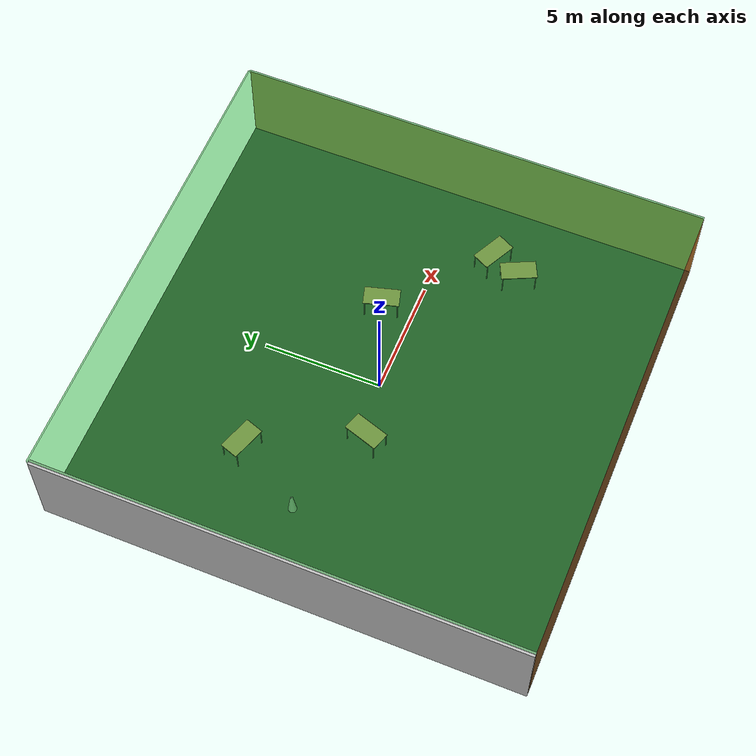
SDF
<sdf version="1.4">
 <world name="default">
  <physics type="ode">
   <max_step_size>0.001</max_step_size>
   <real_time_factor>1</real_time_factor>
   <real_time_update_rate>1000</real_time_update_rate>
   <gravity>0 0 -9.8</gravity>
  </physics>
  <scene><ambient>0.4 0.4 0.4 1</ambient><background>0.7 0.7 0.7 1</background><shadows>1</shadows></scene>
  <model name="Surrounding">
   <static>1</static>
   <link name="Ceiling">
    <collision name="Ceiling_Collision"><geometry><box><size>20 20 0.1</size></box></geometry></collision>
    <visual name="Ceiling_Visual">
     <geometry><box><size>20 20 0.1</size></box></geometry>
     <material>
      <script><uri>file://media/materials/scripts/gazebo.material</uri><name>Gazebo/GreenTransparent</name></script>
     </material>
    </visual>
    <pose>0 0 4.05 0 0 0</pose>
   </link>
   <link name="Wall_South">
    <collision name="Wall_South_Collision">
     <geometry><box><size>20 0 4</size></box></geometry>
     <pose>0 0 2 0 -0 0</pose>
    </collision>
    <visual name="Wall_South_Visual">
     <pose>0 0 2 0 -0 0</pose>
     <geometry><box><size>20 0 4</size></box></geometry>
     <material>
      <script>
       <uri>file://media/materials/scripts/gazebo.material</uri>
       <name>Gazebo/OrangeTransparent</name>
      </script>
     </material>
    </visual>
    <velocity_decay><linear>0</linear><angular>0</angular></velocity_decay>
    <pose>0 -10 0 0 -0 0</pose>
   </link>
   <link name="Wall_East">
    <collision name="Wall_21_Collision">
     <geometry><box><size>20 0 4</size></box></geometry>
     <pose>0 0 2 0 -0 0</pose>
    </collision>
    <visual name="Wall_21_Visual">
     <pose>0 0 2 0 -0 0</pose>
     <geometry><box><size>20 0 4</size></box></geometry>
     <material>
      <script><uri>file://media/materials/scripts/gazebo.material</uri><name>Gazebo/WoodFloor</name></script>
     </material>
    </visual>
    <velocity_decay><linear>0</linear><angular>0</angular></velocity_decay>
    <pose>10 0 0 0 -0 1.5708</pose>
   </link>
   <link name="Wall_North">
    <collision name="Wall_22_Collision">
     <geometry><box><size>20 0.2 4</size></box></geometry>
     <pose>0 0 2 0 -0 0</pose>
    </collision>
    <visual name="Wall_22_Visual">
     <pose>0 0 2 0 -0 0</pose>
     <geometry><box><size>20 0.2 4</size></box></geometry>
     <material>
      <script><uri>file://media/materials/scripts/gazebo.material</uri><name>Gazebo/GreenTransparent</name></script>
     </material>
    </visual>
    <velocity_decay><linear>0</linear><angular>0</angular></velocity_decay>
    <pose>0 10 0 0 -0 0</pose>
   </link>
   <link name="Wall_West">
    <collision name="Wall_23_Collision">
     <geometry><box><size>20 0.2 4</size></box></geometry>
     <pose>0 0 2 0 -0 0</pose>
    </collision>
    <visual name="Wall_23_Visual">
     <pose>0 0 2 0 -0 0</pose>
     <geometry><box><size>20 0.2 4</size></box></geometry>
     <material>
      <script><uri>file://media/materials/scripts/gazebo.material</uri><name>Gazebo/JointAnchor</name></script>
     </material>
    </visual>
    <velocity_decay><linear>0</linear><angular>0</angular></velocity_decay>
    <pose>-10 0 0 0 0 -1.5708</pose>
   </link>
   <link name="Ground_link">
    <collision name="collision">
     <pose>0 0 .05 0 -0 0</pose>
     <geometry><box><size>20 20 0.1</size></box></geometry>
    </collision>
    <visual name="visual">
     <pose>0 0 .05 0 -0 0</pose>
     <geometry><box><size>20 20 0.1</size></box></geometry>
     <material>
      <script><uri>file://media/materials/scripts/gazebo.material</uri><name>Gazebo/Black</name></script>
     </material>
    </visual>
   </link>
   <static>1</static>
  </model>
  <spherical_coordinates>
   <surface_model>EARTH_WGS84</surface_model>
   <latitude_deg>0</latitude_deg>
   <longitude_deg>0</longitude_deg>
   <elevation>0</elevation>
   <heading_deg>0</heading_deg>
  </spherical_coordinates>
  <light name="lightball_0" type="diffuse">
   <diffuse>0.8 0.8 0.8 1</diffuse>
   <specular>0.2 0.2 0.2 1</specular>
   <attenuation>
    <range>100</range>
    <constant>0.7</constant>
    <linear>0.01</linear>
    <quadratic>0.001</quadratic>
   </attenuation>
   <direction>-0.5 0.1 -0.9</direction>
   <pose>7.7302636399 -9.62024024462 0.529866899505 0 0 0</pose>
  </light>
  <light name="lightball_1" type="diffuse">
   <diffuse>0.8 0.8 0.8 1</diffuse>
   <specular>0.2 0.2 0.2 1</specular>
   <attenuation>
    <range>100</range>
    <constant>0.7</constant>
    <linear>0.01</linear>
    <quadratic>0.001</quadratic>
   </attenuation>
   <direction>-0.5 0.1 -0.9</direction>
   <pose>9.1009621195 -2.47808995886 3.73089899992 0 0 0</pose>
  </light>
  <light name="lightball_2" type="diffuse">
   <diffuse>0.8 0.8 0.8 1</diffuse>
   <specular>0.2 0.2 0.2 1</specular>
   <attenuation>
    <range>100</range>
    <constant>0.7</constant>
    <linear>0.01</linear>
    <quadratic>0.001</quadratic>
   </attenuation>
   <direction>-0.5 0.1 -0.9</direction>
   <pose>7.43702225655 -9.64500360311 3.3229554987 0 0 0</pose>
  </light>
  <light name="lightball_3" type="diffuse">
   <diffuse>0.8 0.8 0.8 1</diffuse>
   <specular>0.2 0.2 0.2 1</specular>
   <attenuation>
    <range>100</range>
    <constant>0.7</constant>
    <linear>0.01</linear>
    <quadratic>0.001</quadratic>
   </attenuation>
   <direction>-0.5 0.1 -0.9</direction>
   <pose>7.10246764244 -1.18428997081 0.864522743402 0 0 0</pose>
  </light>
  <light name="lightball_4" type="diffuse">
   <diffuse>0.8 0.8 0.8 1</diffuse>
   <specular>0.2 0.2 0.2 1</specular>
   <attenuation>
    <range>100</range>
    <constant>0.7</constant>
    <linear>0.01</linear>
    <quadratic>0.001</quadratic>
   </attenuation>
   <direction>-0.5 0.1 -0.9</direction>
   <pose>2.46361598347 3.72945640748 3.67423808109 0 0 0</pose>
  </light>
  <light name="lightball_5" type="diffuse">
   <diffuse>0.8 0.8 0.8 1</diffuse>
   <specular>0.2 0.2 0.2 1</specular>
   <attenuation>
    <range>100</range>
    <constant>0.7</constant>
    <linear>0.01</linear>
    <quadratic>0.001</quadratic>
   </attenuation>
   <direction>-0.5 0.1 -0.9</direction>
   <pose>-3.51714521344 -2.5332185677 1.07196468065 0 0 0</pose>
  </light>
  <light name="lightball_6" type="diffuse">
   <diffuse>0.8 0.8 0.8 1</diffuse>
   <specular>0.2 0.2 0.2 1</specular>
   <attenuation>
    <range>100</range>
    <constant>0.7</constant>
    <linear>0.01</linear>
    <quadratic>0.001</quadratic>
   </attenuation>
   <direction>-0.5 0.1 -0.9</direction>
   <pose>-3.58783560026 0.92346793037 0.865997832595 0 0 0</pose>
  </light>
  <light name="lightball_7" type="diffuse">
   <diffuse>0.8 0.8 0.8 1</diffuse>
   <specular>0.2 0.2 0.2 1</specular>
   <attenuation>
    <range>100</range>
    <constant>0.7</constant>
    <linear>0.01</linear>
    <quadratic>0.001</quadratic>
   </attenuation>
   <direction>-0.5 0.1 -0.9</direction>
   <pose>4.68211845922 0.374676817648 1.86685367907 0 0 0</pose>
  </light>
  <light name="lightball_8" type="diffuse">
   <diffuse>0.8 0.8 0.8 1</diffuse>
   <specular>0.2 0.2 0.2 1</specular>
   <attenuation>
    <range>100</range>
    <constant>0.7</constant>
    <linear>0.01</linear>
    <quadratic>0.001</quadratic>
   </attenuation>
   <direction>-0.5 0.1 -0.9</direction>
   <pose>-7.06745112832 9.63460801728 2.69782549873 0 0 0</pose>
  </light>
  <include>
   <uri>model://construction_cone</uri>
   <pose>-6.40275763435 1.0513883382 0 0 0 0.431922603162</pose>
  </include>
  <include><uri>model://table</uri><pose>-4.74487032686 3.92098594712 0 0 0 2.80958477743</pose></include>
  <include><uri>model://table</uri><pose>-2.59743860943 -0.49236729156 0 0 0 1.25570493085</pose></include>
  <include><uri>model://table</uri><pose>3.42975452882 1.3091136184 0 0 0 1.84874564304</pose></include>
  <include><uri>model://table</uri><pose>6.77263155078 -3.45740327825 0 0 0 2.01165866056</pose></include>
  <include><uri>model://table</uri><pose>7.24841408487 -2.1676847313 0 0 0 2.67660467187</pose></include>
 </world>
</sdf>

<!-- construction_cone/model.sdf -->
<sdf version="1.5">
  <model name="Construction Cone">
    <link name="link">
      <collision name="collision">
        <geometry>
          <mesh>
            <scale>10 10 10</scale>
            <uri>file://isr-testbed/construction_cone/meshes/construction_cone.dae</uri>
          </mesh>
        </geometry>
      </collision>
      <visual name="visual">
        <geometry>
          <mesh>
            <scale>10 10 10</scale>
            <uri>file://isr-testbed/construction_cone/meshes/construction_cone.dae</uri>
          </mesh>
        </geometry>
      </visual>
    </link>
  </model>
</sdf>

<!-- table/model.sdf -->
<sdf version="1.5">
  <model name="table">
    <static>true</static>
    <link name="link">
      <collision name="surface">
        <pose>0 0 1.0 0 0 0</pose>
        <geometry>
          <box>
            <size>1.5 0.8 0.03</size>
          </box>
        </geometry>
        <surface>
          <friction>
            <ode>
              <mu>0.6</mu>
              <mu2>0.6</mu2>
            </ode>
          </friction>
        </surface>
      </collision>
      <visual name="visual1">
        <pose>0 0 1.0 0 0 0</pose>
        <geometry>
          <box>
            <size>1.5 0.8 0.03</size>
          </box>
        </geometry>
        <material>
          <script>
            <uri>model://media/materials/scripts/gazebo.material</uri>
            <name>Gazebo/Wood</name>
          </script>
        </material>
      </visual>
      <collision name="front_left_leg">
        <pose>0.68 0.38 0.5 0 0 0</pose>
        <geometry>
          <cylinder>
            <radius>0.02</radius>
            <length>1.0</length>
          </cylinder>
        </geometry>
      </collision>
      <visual name="front_left_leg">
        <pose>0.68 0.38 0.5 0 0 0</pose>
        <geometry>
          <cylinder>
            <radius>0.02</radius>
            <length>1.0</length>
          </cylinder>
        </geometry>
        <material>
          <script>
            <uri>model://media/materials/scripts/gazebo.material</uri>
            <name>Gazebo/Grey</name>
          </script>
        </material>
      </visual>
      <collision name="front_right_leg">
        <pose>0.68 -0.38 0.5 0 0 0</pose>
        <geometry>
          <cylinder>
            <radius>0.02</radius>
            <length>1.0</length>
          </cylinder>
        </geometry>
      </collision>
      <visual name="front_right_leg">
        <pose>0.68 -0.38 0.5 0 0 0</pose>
        <geometry>
          <cylinder>
            <radius>0.02</radius>
            <length>1.0</length>
          </cylinder>
        </geometry>
        <material>
          <script>
            <uri>model://media/materials/scripts/gazebo.material</uri>
            <name>Gazebo/Grey</name>
          </script>
        </material>
      </visual>
      <collision name="back_right_leg">
        <pose>-0.68 -0.38 0.5 0 0 0</pose>
        <geometry>
          <cylinder>
            <radius>0.02</radius>
            <length>1.0</length>
          </cylinder>
        </geometry>
      </collision>
      <visual name="back_right_leg">
        <pose>-0.68 -0.38 0.5 0 0 0</pose>
        <geometry>
          <cylinder>
            <radius>0.02</radius>
            <length>1.0</length>
          </cylinder>
        </geometry>
        <material>
          <script>
            <uri>model://media/materials/scripts/gazebo.material</uri>
            <name>Gazebo/Grey</name>
          </script>
        </material>
      </visual>
      <collision name="back_left_leg">
        <pose>-0.68 0.38 0.5 0 0 0</pose>
        <geometry>
          <cylinder>
            <radius>0.02</radius>
            <length>1.0</length>
          </cylinder>
        </geometry>
      </collision>
      <visual name="back_left_leg">
        <pose>-0.68 0.38 0.5 0 0 0</pose>
        <geometry>
          <cylinder>
            <radius>0.02</radius>
            <length>1.0</length>
          </cylinder>
        </geometry>
        <material>
          <script>
            <uri>model://media/materials/scripts/gazebo.material</uri>
            <name>Gazebo/Grey</name>
          </script>
        </material>
      </visual>
    </link>
  </model>
</sdf>
